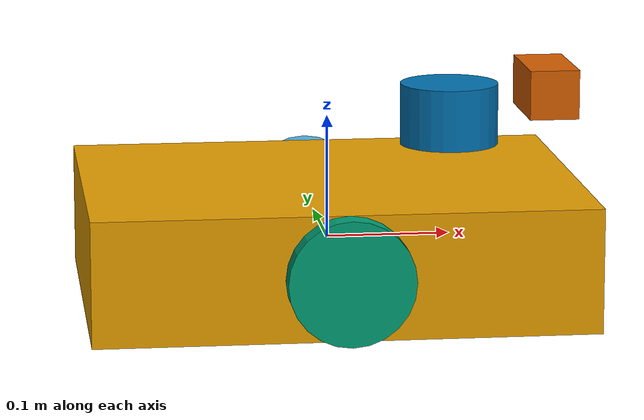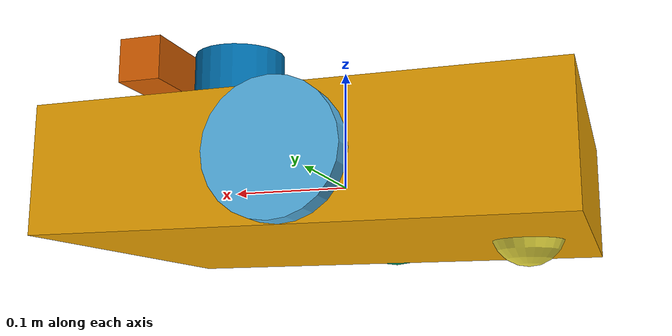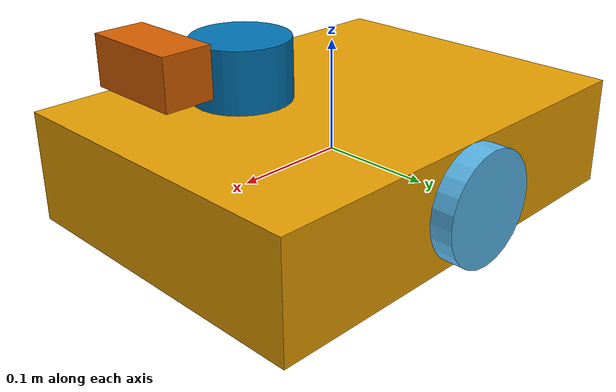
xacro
<?xml version="1.0"?>

<robot name="my_robot"
       xmlns:xacro="http://www.ros.org/wiki/xacro">
  <xacro:property name="wheel_radius" value="0.05"/>
  <xacro:property name="wheel_width" value="0.02"/>
  <link name="base_link">

    <visual>
      <geometry>
        <box size="0.4 0.3 0.1"/>
      </geometry>
    </visual>

  </link>

  <link name="left_wheel_link">
    <visual>
      <geometry>
 <cylinder radius="${wheel_radius}" length="${wheel_width}"/>
      </geometry>
    </visual>
  </link>

  <joint name="left_wheel_joint" type="continuous">
    <parent link="base_link"/>
    <child link="left_wheel_link"/>

    <origin xyz="0 0.16 0" rpy="1.5708 0 0"/>

    <axis xyz="0 0 1"/>
  </joint>

  <link name="right_wheel_link">
    <visual>
      <geometry>
        <cylinder radius="${wheel_radius}" length="${wheel_width}"/>
      </geometry>
    </visual>
  </link>

  <joint name="right_wheel_joint" type="continuous">
    <parent link="base_link"/>
    <child link="right_wheel_link"/>

    <origin xyz="0 -0.16 0" rpy="1.5708 0 0"/>

    <axis xyz="0 0 1"/>
  </joint>
  <link name="caster_link">
    <visual>
      <geometry>
        <sphere radius="0.03"/>
      </geometry>
    </visual>
  </link>

  <joint name="caster_joint" type="fixed">
    <parent link="base_link"/>
    <child link="caster_link"/>

    <origin xyz="-0.15 0 -0.04" rpy="0 0 0"/>
  </joint>
  <link name="lidar_link">
    <visual>
      <geometry>
        <cylinder radius="0.04" length="0.05"/>
      </geometry>
    </visual>
  </link>

  <joint name="lidar_joint" type="fixed">
    <parent link="base_link"/>
    <child link="lidar_link"/>

    <origin xyz="0.10 0 0.10" rpy="0 0 0"/>
  </joint>
  <link name="camera_link">
    <visual>
      <geometry>
        <box size="0.04 0.08 0.04"/>
      </geometry>
    </visual>
  </link>

  <joint name="camera_joint" type="fixed">
    <parent link="base_link"/>
    <child link="camera_link"/>

    <origin xyz="0.18 0 0.12" rpy="0 0 0"/>
  </joint>
</robot>
